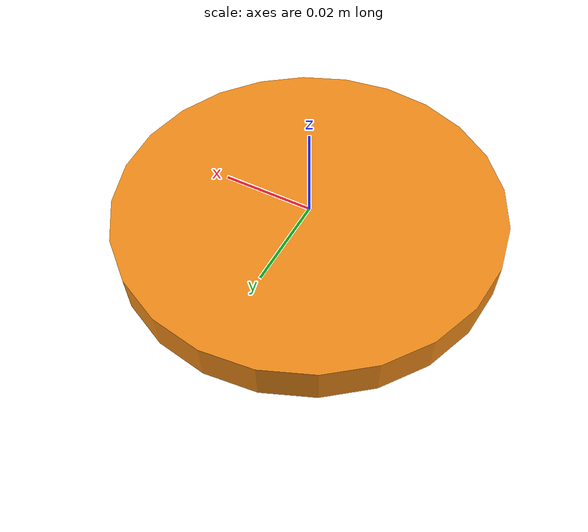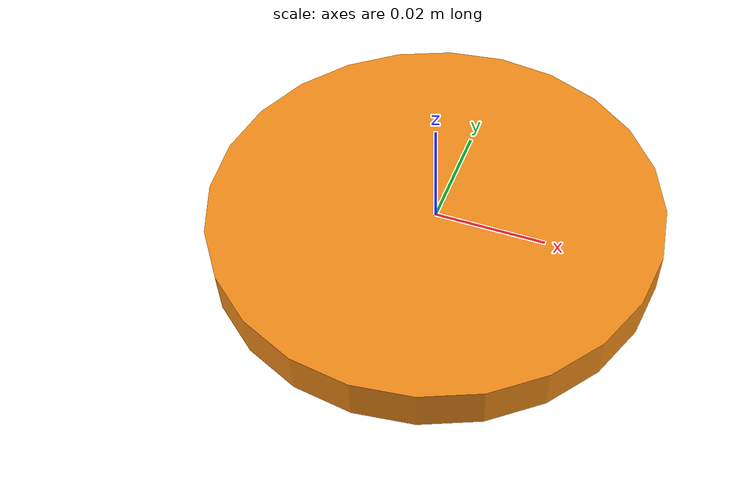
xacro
<?xml version="1.0"?>
<robot name="gazebo2" xmlns:xacro="http://ros.org/wiki/xacro">

  <xacro:property name="rpy_default" value="0 0 0" />
  <xacro:property name="xyz_default" value="0 0 0" />
    <xacro:property name="puckR" value="0.04" />
  <xacro:property name="puckL" value="0.008" />

  <xacro:macro name="sylinder" params ="navn r l xyz:={xyz_default} rpy:=${rpy_default} mass:=10 farge:=Gazebo/White">
    <link name="${navn}">
      <visual>
        <geometry>
          <cylinder radius="${r}" length="${l}"/>
        </geometry>
        <origin rpy="${rpy}" xyz="${xyz}"/>
      </visual>
      <collision>
        <geometry>
          <cylinder radius="${r}" length="${l}"/>
        </geometry>
        <origin rpy="${rpy}" xyz="${xyz}"/>
        <surface>
          <bounce restitution_coefficient="0.5" threshold="0"/>
        </surface>
        <contact>
          <ode>
             <max_vel>30</max_vel>
          </ode>
        </contact>
      </collision>
        <inertial>
        	<mass value="${mass}" />
        	<inertia ixx="${mass*(3*r*r+l*l)/6}" ixy="0.0" ixz="0.0" iyy="${mass*(3*r*r+l*l)/6}" iyz="0.0" izz="${mass*r*r}" />
          <origin rpy="${rpy}" xyz="${xyz}"/>

        </inertial>
    </link>

    <gazebo reference="${navn}">
      <mu1 value="0.0008" />
      <mu2 value="0.0008" />
      **<maxVel value="30.0"/>**
      <kp value="300.0" />
      <kd value="0.01" />
      <turnGravityOff>false</turnGravityOff>
      <material>${farge}</material>
    </gazebo>
  </xacro:macro>

  <xacro:sylinder navn="puck" r="${puckR}" l="${puckL}" farge ="Gazebo/Orange"
                  xyz="0 0 0" rpy="0 0 0" mass="0.03"/>

  <link name="dummy">
  </link>

    <joint name="dummy_joint" type="fixed">
		<parent link="dummy"/>
		<child link="puck"/>
		<origin xyz="0 0 0" />
  </joint>
</robot>
